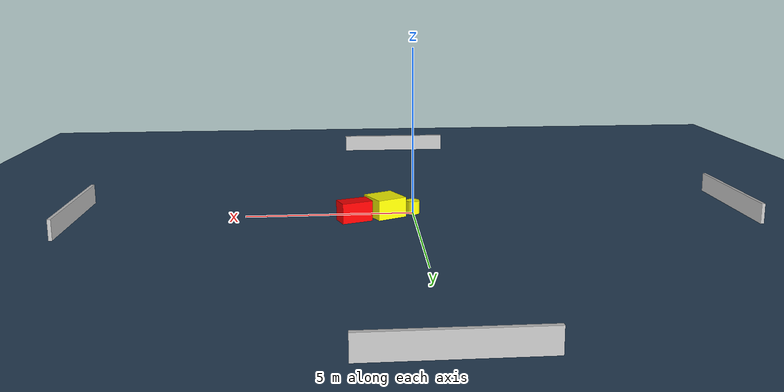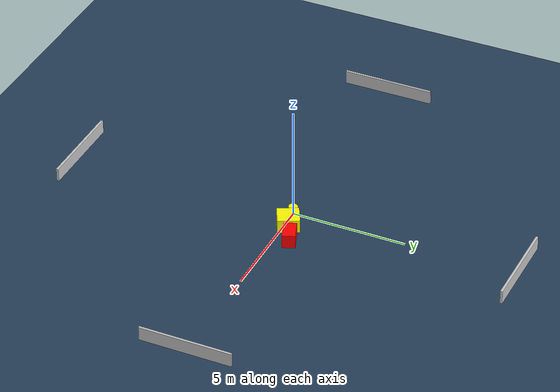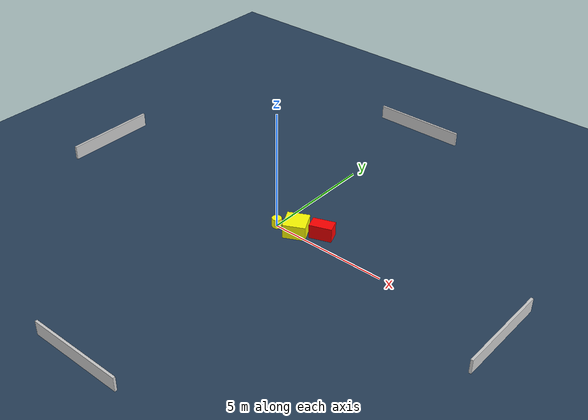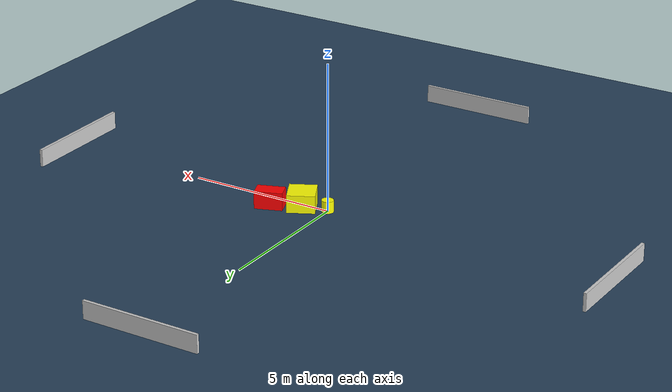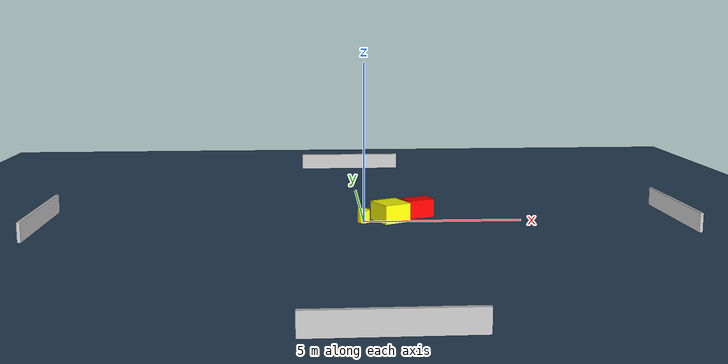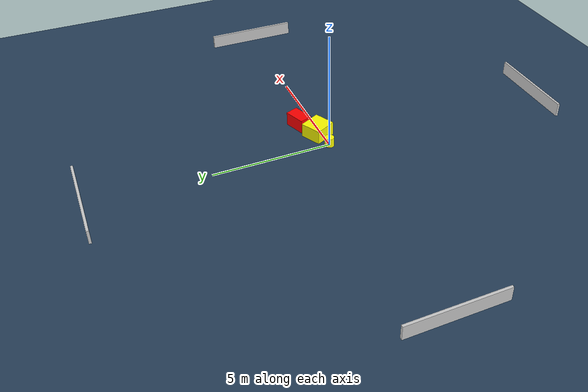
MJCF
<?xml version="1.0" ?>
<mujoco model="generated_environment">
  <option timestep="0.01" integrator="RK4" cone="elliptic"/>
  <default>
    <geom density="1"/>
  </default>
  <asset>
    <texture builtin="gradient" height="3072" name="skybox" rgb1="0.3 0.5 0.7" rgb2="0 0 0" type="skybox" width="512"/>
    <texture builtin="checker" height="300" name="groundplane" rgb1="0.2 0.3 0.4" rgb2="0.1 0.2 0.3" type="2d" width="300"/>
    <material name="groundplane" reflectance="0.2" texrepeat="5 5" texture="groundplane"/>
  </asset>
  <worldbody>
    <light dir="0 0 -1" directional="true" pos="0 0 1.5"/>
    <geom condim="3" friction="0.5 0.005 0.001" material="groundplane" name="floor" pos="0 0 0" size="0 0 0.05" type="plane"/>
    <body name="walls">
      <geom name="wall_1" condim="4" pos="-10.0 0.0 0.3" rgba="0.800000011920929 0.800000011920929 0.800000011920929 1.0" size="0.05 2.0 0.3" type="box"/>
      <geom name="wall_2" condim="4" pos="10.0 0.0 0.3" rgba="0.800000011920929 0.800000011920929 0.800000011920929 1.0" size="0.05 2.0 0.3" type="box"/>
      <geom name="wall_3" condim="4" pos="0.0 -10.0 0.3" rgba="0.800000011920929 0.800000011920929 0.800000011920929 1.0" size="2.0 0.05 0.3" type="box"/>
      <geom name="wall_4" condim="4" pos="0.0 10.0 0.3" rgba="0.800000011920929 0.800000011920929 0.800000011920929 1.0" size="2.0 0.05 0.3" type="box"/>
    </body>
    <body name="robot">
      <joint name="joint_x" type="slide" pos="0 0 0" axis="1 0 0"/>
      <joint name="joint_y" type="slide" pos="0 0 0" axis="0 1 0"/>
      <geom name="robot" type="cylinder" pos="0.0 0.0 0.2" size="0.2 0.2 0.0" mass="5.0" friction="1.0 0.005 0.0001" condim="4" rgba="1.0 1.0 0.0 1.0"/>
    </body>
    <body name="obstacle_1_movable">
      <geom name="obstacle_1_movable" condim="4" pos="0.8558065407434065 0.170543462075933 0.3" euler="0 0 116.96396901976593" friction="0.0 0.005 0.001" rgba="1.0 1.0 0.0 1.0" size="0.46909875997215605 0.45917139451678646 0.3" type="box" mass="0.1"/>
      <joint type="free"/>
    </body>
    <body name="obstacle_2_static">
      <geom name="obstacle_2_static" condim="4" pos="1.773405304025413 0.6468291224840622 0.3" euler="0 0 20.456814103111682" friction="0.0 0.005 0.001" rgba="1.0 0.0 0.0 1.0" size="0.46327166792321356 0.2753372802015848 0.3" type="box"/>
    </body>
  </worldbody>
  <actuator>
    <motor name="actuator_x" joint="joint_x" gear="1" ctrlrange="-1 1"/>
    <motor name="actuator_y" joint="joint_y" gear="1" ctrlrange="-1 1"/>
  </actuator>
</mujoco>
